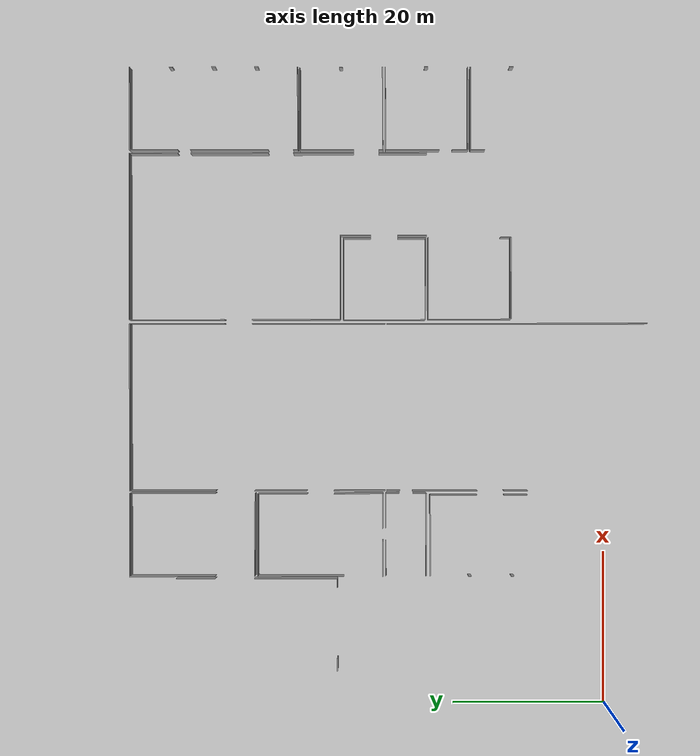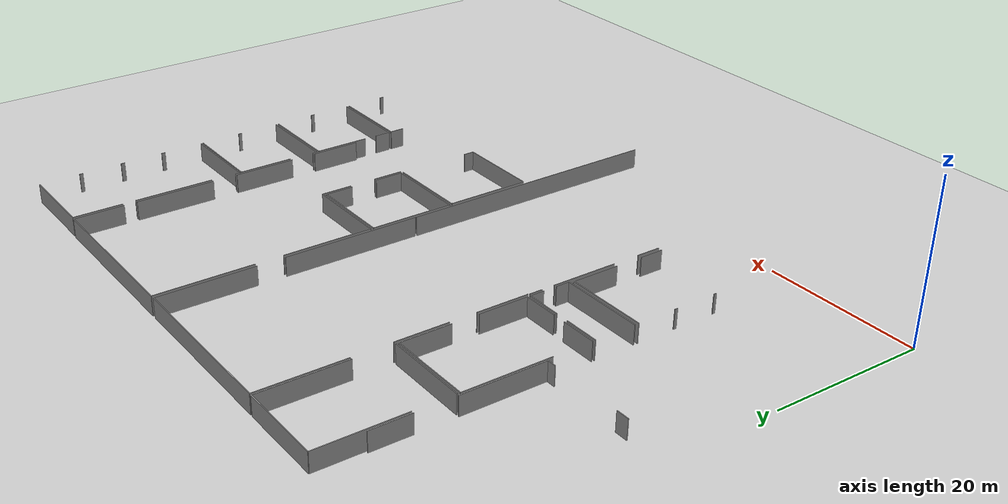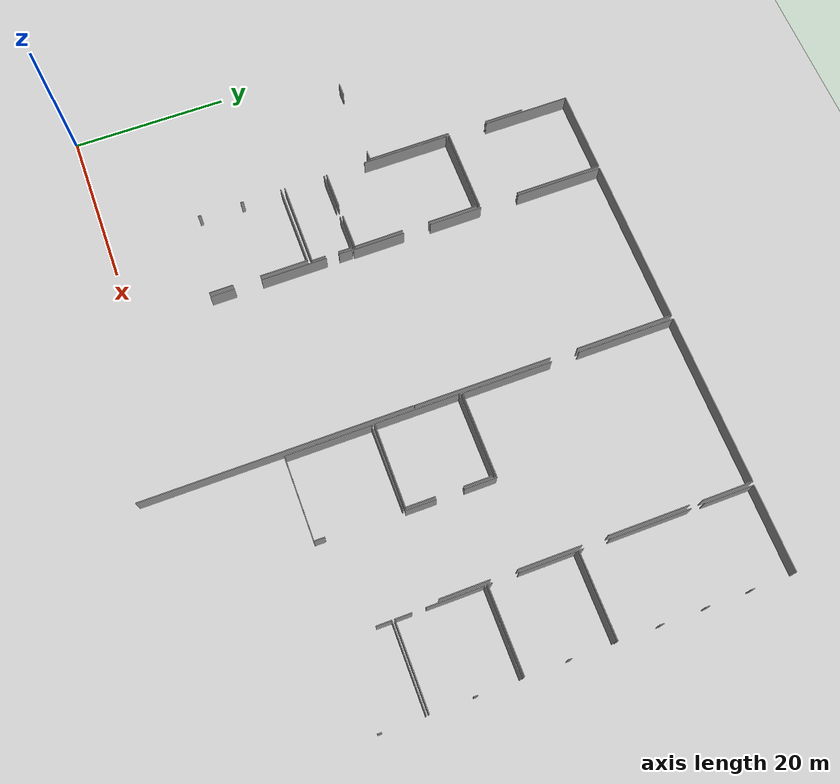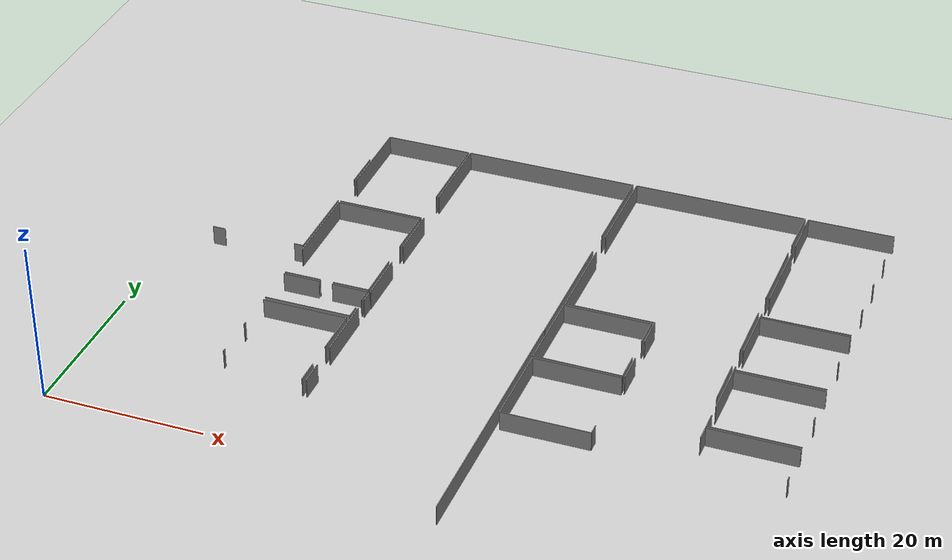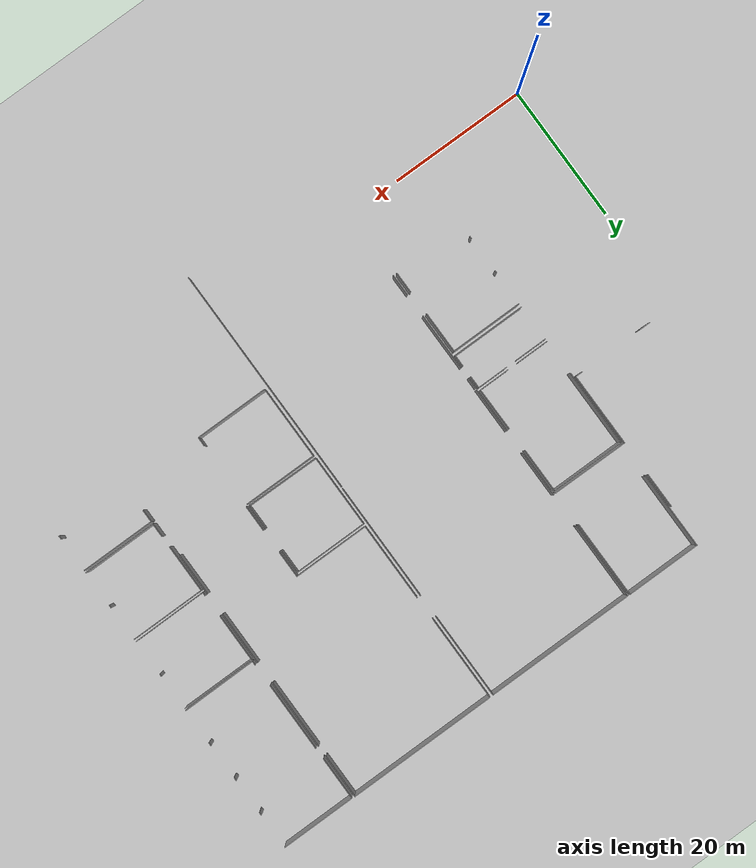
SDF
<sdf version="1.6">
 <world name="default">
  <model name="ground_plane">
   <static>1</static>
   <link name="link">
    <collision name="collision">
     <geometry><plane><normal>0 0 1</normal><size>100 100</size></plane></geometry>
     <surface><friction><ode><mu>100</mu><mu2>50</mu2></ode></friction></surface>
    </collision>
    <visual name="visual">
     <cast_shadows>0</cast_shadows>
     <geometry><plane><normal>0 0 1</normal><size>100 100</size></plane></geometry>
     <material>
      <script><uri>file://media/materials/scripts/gazebo.material</uri><name>Gazebo/Grey</name></script>
     </material>
    </visual>
   </link>
  </model>
  <model name="0510045904_A_40_1_102">
   <static>1</static>
   <link name="Wall_203">
    <collision name="Wall_203_Collision">
     <geometry><box><size>6.77136364213 0.1 2.5</size></box></geometry>
     <pose>3.38568182107 0 1.25 0 0 0</pose>
    </collision>
    <visual name="Wall_203_Visual">
     <pose>3.38568182107 0 1.25 0 0 0</pose>
     <geometry><box><size>6.77136364213 0.1 2.5</size></box></geometry>
     <material>
      <script><uri>file://media/materials/scripts/gazebo.material</uri><name>Gazebo/Grey</name></script>
      <ambient>1 1 1 1</ambient>
     </material>
    </visual>
    <pose>112.547132682 -33.5818299542 0 0 0 1.57079632679</pose>
   </link>
   <link name="Wall_204">
    <collision name="Wall_204_Collision">
     <geometry><box><size>6.89121078624 0.1 2.5</size></box></geometry>
     <pose>3.44560539312 0 1.25 0 0 0</pose>
    </collision>
    <visual name="Wall_204_Visual">
     <pose>3.44560539312 0 1.25 0 0 0</pose>
     <geometry><box><size>6.89121078624 0.1 2.5</size></box></geometry>
     <material>
      <script><uri>file://media/materials/scripts/gazebo.material</uri><name>Gazebo/Grey</name></script>
      <ambient>1 1 1 1</ambient>
     </material>
    </visual>
    <pose>112.547132682 -23.302144299 0 0 0 1.57079632679</pose>
   </link>
   <link name="Wall_205">
    <collision name="Wall_205_Collision">
     <geometry><box><size>11.3110820521 0.1 2.5</size></box></geometry>
     <pose>5.65554102606 0 1.25 0 0 0</pose>
    </collision>
    <visual name="Wall_205_Visual">
     <pose>5.65554102606 0 1.25 0 0 0</pose>
     <geometry><box><size>11.3110820521 0.1 2.5</size></box></geometry>
     <material>
      <script><uri>file://media/materials/scripts/gazebo.material</uri><name>Gazebo/Grey</name></script>
      <ambient>1 1 1 1</ambient>
     </material>
    </visual>
    <pose>112.547132682 -11.3301255602 0 0 0 1.57079632679</pose>
   </link>
   <link name="Wall_206">
    <collision name="Wall_206_Collision">
     <geometry><box><size>21.9612274176 0.1 2.5</size></box></geometry>
     <pose>10.9806137088 0 1.25 0 0 0</pose>
    </collision>
    <visual name="Wall_206_Visual">
     <pose>10.9806137088 0 1.25 0 0 0</pose>
     <geometry><box><size>21.9612274176 0.1 2.5</size></box></geometry>
     <material>
      <script><uri>file://media/materials/scripts/gazebo.material</uri><name>Gazebo/Grey</name></script>
      <ambient>1 1 1 1</ambient>
     </material>
    </visual>
    <pose>112.547132682 -0.0190435080681 0 0 0 0.0</pose>
   </link>
   <link name="Wall_207">
    <collision name="Wall_207_Collision">
     <geometry><box><size>12.4978734749 0.1 2.5</size></box></geometry>
     <pose>6.24893673747 0 1.25 0 0 0</pose>
    </collision>
    <visual name="Wall_207_Visual">
     <pose>6.24893673747 0 1.25 0 0 0</pose>
     <geometry><box><size>12.4978734749 0.1 2.5</size></box></geometry>
     <material>
      <script><uri>file://media/materials/scripts/gazebo.material</uri><name>Gazebo/Grey</name></script>
      <ambient>1 1 1 1</ambient>
     </material>
    </visual>
    <pose>134.5083601 -0.0190435080681 0 0 0 -1.57079632679</pose>
   </link>
   <link name="Wall_208">
    <collision name="Wall_208_Collision">
     <geometry><box><size>17.4921019273 0.1 2.5</size></box></geometry>
     <pose>8.74605096366 0 1.25 0 0 0</pose>
    </collision>
    <visual name="Wall_208_Visual">
     <pose>8.74605096366 0 1.25 0 0 0</pose>
     <geometry><box><size>17.4921019273 0.1 2.5</size></box></geometry>
     <material>
      <script><uri>file://media/materials/scripts/gazebo.material</uri><name>Gazebo/Grey</name></script>
      <ambient>1 1 1 1</ambient>
     </material>
    </visual>
    <pose>134.5083601 -16.08973301 0 0 0 -1.57155115319</pose>
   </link>
   <link name="Wall_209">
    <collision name="Wall_209_Collision">
     <geometry><box><size>11.2978785532 0.1 2.5</size></box></geometry>
     <pose>5.6489392766 0 1.25 0 0 0</pose>
    </collision>
    <visual name="Wall_209_Visual">
     <pose>5.6489392766 0 1.25 0 0 0</pose>
     <geometry><box><size>11.2978785532 0.1 2.5</size></box></geometry>
     <material>
      <script><uri>file://media/materials/scripts/gazebo.material</uri><name>Gazebo/Grey</name></script>
      <ambient>1 1 1 1</ambient>
     </material>
    </visual>
    <pose>112.220346084 -11.3027029086 0 0 0 1.57079632679</pose>
   </link>
   <link name="Wall_210">
    <collision name="Wall_210_Collision">
     <geometry><box><size>10.9139614305 0.1 2.5</size></box></geometry>
     <pose>5.45698071527 0 1.25 0 0 0</pose>
    </collision>
    <visual name="Wall_210_Visual">
     <pose>5.45698071527 0 1.25 0 0 0</pose>
     <geometry><box><size>10.9139614305 0.1 2.5</size></box></geometry>
     <material>
      <script><uri>file://media/materials/scripts/gazebo.material</uri><name>Gazebo/Grey</name></script>
      <ambient>1 1 1 1</ambient>
     </material>
    </visual>
    <pose>112.220346084 -0.00482435537725 0 0 0 3.14159265359</pose>
   </link>
   <link name="Wall_211">
    <collision name="Wall_211_Collision">
     <geometry><box><size>11.2074853682 0.1 2.5</size></box></geometry>
     <pose>5.60374268412 0 1.25 0 0 0</pose>
    </collision>
    <visual name="Wall_211_Visual">
     <pose>5.60374268412 0 1.25 0 0 0</pose>
     <geometry><box><size>11.2074853682 0.1 2.5</size></box></geometry>
     <material>
      <script><uri>file://media/materials/scripts/gazebo.material</uri><name>Gazebo/Grey</name></script>
      <ambient>1 1 1 1</ambient>
     </material>
    </visual>
    <pose>101.306384653 -0.00482435537725 0 0 0 -1.57079632679</pose>
   </link>
   <link name="Wall_212">
    <collision name="Wall_212_Collision">
     <geometry><box><size>10.9140941786 0.1 2.5</size></box></geometry>
     <pose>5.45704708928 0 1.25 0 0 0</pose>
    </collision>
    <visual name="Wall_212_Visual">
     <pose>5.45704708928 0 1.25 0 0 0</pose>
     <geometry><box><size>10.9140941786 0.1 2.5</size></box></geometry>
     <material>
      <script><uri>file://media/materials/scripts/gazebo.material</uri><name>Gazebo/Grey</name></script>
      <ambient>1 1 1 1</ambient>
     </material>
    </visual>
    <pose>101.306384653 -16.4155039547 0 0 0 -0.00493214249721</pose>
   </link>
   <link name="Wall_213">
    <collision name="Wall_213_Collision">
     <geometry><box><size>1.17028704914 0.1 2.5</size></box></geometry>
     <pose>0.585143524572 0 1.25 0 0 0</pose>
    </collision>
    <visual name="Wall_213_Visual">
     <pose>0.585143524572 0 1.25 0 0 0</pose>
     <geometry><box><size>1.17028704914 0.1 2.5</size></box></geometry>
     <material>
      <script><uri>file://media/materials/scripts/gazebo.material</uri><name>Gazebo/Grey</name></script>
      <ambient>1 1 1 1</ambient>
     </material>
    </visual>
    <pose>101.003973745 -27.2438965557 0 0 0 3.14159265359</pose>
   </link>
   <link name="Wall_214">
    <collision name="Wall_214_Collision">
     <geometry><box><size>1.65297650031 0.1 2.5</size></box></geometry>
     <pose>0.826488250156 0 1.25 0 0 0</pose>
    </collision>
    <visual name="Wall_214_Visual">
     <pose>0.826488250156 0 1.25 0 0 0</pose>
     <geometry><box><size>1.65297650031 0.1 2.5</size></box></geometry>
     <material>
      <script><uri>file://media/materials/scripts/gazebo.material</uri><name>Gazebo/Grey</name></script>
      <ambient>1 1 1 1</ambient>
     </material>
    </visual>
    <pose>90.538169538 -27.2438965557 0 0 0 3.14159265359</pose>
   </link>
   <link name="Wall_220">
    <collision name="Wall_220_Collision">
     <geometry><box><size>5.16307590742 0.1 2.5</size></box></geometry>
     <pose>2.58153795371 0 1.25 0 0 0</pose>
    </collision>
    <visual name="Wall_220_Visual">
     <pose>2.58153795371 0 1.25 0 0 0</pose>
     <geometry><box><size>5.16307590742 0.1 2.5</size></box></geometry>
     <material>
      <script><uri>file://media/materials/scripts/gazebo.material</uri><name>Gazebo/Grey</name></script>
      <ambient>1 1 1 1</ambient>
     </material>
    </visual>
    <pose>100.991278073 -6.06802341082 0 0 0 -1.57079632679</pose>
   </link>
   <link name="Wall_221">
    <collision name="Wall_221_Collision">
     <geometry><box><size>10.8776592173 0.1 2.5</size></box></geometry>
     <pose>5.43882960863 0 1.25 0 0 0</pose>
    </collision>
    <visual name="Wall_221_Visual">
     <pose>5.43882960863 0 1.25 0 0 0</pose>
     <geometry><box><size>10.8776592173 0.1 2.5</size></box></geometry>
     <material>
      <script><uri>file://media/materials/scripts/gazebo.material</uri><name>Gazebo/Grey</name></script>
      <ambient>1 1 1 1</ambient>
     </material>
    </visual>
    <pose>100.991278073 -16.3662447472 0 0 0 -1.5696291938</pose>
   </link>
   <link name="Wall_222">
    <collision name="Wall_222_Collision">
     <geometry><box><size>4.59583328043 0.1 2.5</size></box></geometry>
     <pose>2.29791664022 0 1.25 0 0 0</pose>
    </collision>
    <visual name="Wall_222_Visual">
     <pose>2.29791664022 0 1.25 0 0 0</pose>
     <geometry><box><size>4.59583328043 0.1 2.5</size></box></geometry>
     <material>
      <script><uri>file://media/materials/scripts/gazebo.material</uri><name>Gazebo/Grey</name></script>
      <ambient>1 1 1 1</ambient>
     </material>
    </visual>
    <pose>112.17057905 -33.2352381073 0 0 0 3.14159265359</pose>
   </link>
   <link name="Wall_223">
    <collision name="Wall_223_Collision">
     <geometry><box><size>4.64636205518 0.1 2.5</size></box></geometry>
     <pose>2.32318102759 0 1.25 0 0 0</pose>
    </collision>
    <visual name="Wall_223_Visual">
     <pose>2.32318102759 0 1.25 0 0 0</pose>
     <geometry><box><size>4.64636205518 0.1 2.5</size></box></geometry>
     <material>
      <script><uri>file://media/materials/scripts/gazebo.material</uri><name>Gazebo/Grey</name></script>
      <ambient>1 1 1 1</ambient>
     </material>
    </visual>
    <pose>105.928624932 -33.2352381073 0 0 0 3.14159265359</pose>
   </link>
   <link name="Wall_224">
    <collision name="Wall_224_Collision">
     <geometry><box><size>11.3077811774 0.1 2.5</size></box></geometry>
     <pose>5.6538905887 0 1.25 0 0 0</pose>
    </collision>
    <visual name="Wall_224_Visual">
     <pose>5.6538905887 0 1.25 0 0 0</pose>
     <geometry><box><size>11.3077811774 0.1 2.5</size></box></geometry>
     <material>
      <script><uri>file://media/materials/scripts/gazebo.material</uri><name>Gazebo/Grey</name></script>
      <ambient>1 1 1 1</ambient>
     </material>
    </visual>
    <pose>101.282262877 -28.1079639951 0 0 0 1.57079632679</pose>
   </link>
   <link name="Wall_225">
    <collision name="Wall_225_Collision">
     <geometry><box><size>10.8593700408 0.1 2.5</size></box></geometry>
     <pose>5.42968502038 0 1.25 0 0 0</pose>
    </collision>
    <visual name="Wall_225_Visual">
     <pose>5.42968502038 0 1.25 0 0 0</pose>
     <geometry><box><size>10.8593700408 0.1 2.5</size></box></geometry>
     <material>
      <script><uri>file://media/materials/scripts/gazebo.material</uri><name>Gazebo/Grey</name></script>
      <ambient>1 1 1 1</ambient>
     </material>
    </visual>
    <pose>101.282262877 -16.8001828177 0 0 0 0.0</pose>
   </link>
   <link name="Wall_226">
    <collision name="Wall_226_Collision">
     <geometry><box><size>6.5613772265 0.1 2.5</size></box></geometry>
     <pose>3.28068861325 0 1.25 0 0 0</pose>
    </collision>
    <visual name="Wall_226_Visual">
     <pose>3.28068861325 0 1.25 0 0 0</pose>
     <geometry><box><size>6.5613772265 0.1 2.5</size></box></geometry>
     <material>
      <script><uri>file://media/materials/scripts/gazebo.material</uri><name>Gazebo/Grey</name></script>
      <ambient>1 1 1 1</ambient>
     </material>
    </visual>
    <pose>112.141632917 -16.8001828177 0 0 0 -1.57079632679</pose>
   </link>
   <link name="Wall_227">
    <collision name="Wall_227_Collision">
     <geometry><box><size>6.39995373816 0.1 2.5</size></box></geometry>
     <pose>3.19997686908 0 1.25 0 0 0</pose>
    </collision>
    <visual name="Wall_227_Visual">
     <pose>3.19997686908 0 1.25 0 0 0</pose>
     <geometry><box><size>6.39995373816 0.1 2.5</size></box></geometry>
     <material>
      <script><uri>file://media/materials/scripts/gazebo.material</uri><name>Gazebo/Grey</name></script>
      <ambient>1 1 1 1</ambient>
     </material>
    </visual>
    <pose>112.141632917 -26.8353498292 0 0 0 -1.56627344552</pose>
   </link>
   <link name="Wall_235">
    <collision name="Wall_235_Collision">
     <geometry><box><size>3.12186575596 0.1 2.5</size></box></geometry>
     <pose>1.56093287798 0 1.25 0 0 0</pose>
    </collision>
    <visual name="Wall_235_Visual">
     <pose>1.56093287798 0 1.25 0 0 0</pose>
     <geometry><box><size>3.12186575596 0.1 2.5</size></box></geometry>
     <material>
      <script><uri>file://media/materials/scripts/gazebo.material</uri><name>Gazebo/Grey</name></script>
      <ambient>1 1 1 1</ambient>
     </material>
    </visual>
    <pose>112.475275179 -52.2442139475 0 0 0 1.57079632679</pose>
   </link>
   <link name="Wall_236">
    <collision name="Wall_236_Collision">
     <geometry><box><size>8.5246359516 0.1 2.5</size></box></geometry>
     <pose>4.2623179758 0 1.25 0 0 0</pose>
    </collision>
    <visual name="Wall_236_Visual">
     <pose>4.2623179758 0 1.25 0 0 0</pose>
     <geometry><box><size>8.5246359516 0.1 2.5</size></box></geometry>
     <material>
      <script><uri>file://media/materials/scripts/gazebo.material</uri><name>Gazebo/Grey</name></script>
      <ambient>1 1 1 1</ambient>
     </material>
    </visual>
    <pose>112.475275179 -45.6371323016 0 0 0 1.57079632679</pose>
   </link>
   <link name="Wall_237">
    <collision name="Wall_237_Collision">
     <geometry><box><size>1.72584965785 0.1 2.5</size></box></geometry>
     <pose>0.862924828926 0 1.25 0 0 0</pose>
    </collision>
    <visual name="Wall_237_Visual">
     <pose>0.862924828926 0 1.25 0 0 0</pose>
     <geometry><box><size>1.72584965785 0.1 2.5</size></box></geometry>
     <material>
      <script><uri>file://media/materials/scripts/gazebo.material</uri><name>Gazebo/Grey</name></script>
      <ambient>1 1 1 1</ambient>
     </material>
    </visual>
    <pose>112.475275179 -35.4656137723 0 0 0 1.57079632679</pose>
   </link>
   <link name="Wall_238">
    <collision name="Wall_238_Collision">
     <geometry><box><size>34.2145822489 0.1 2.5</size></box></geometry>
     <pose>17.1072911245 0 1.25 0 0 0</pose>
    </collision>
    <visual name="Wall_238_Visual">
     <pose>17.1072911245 0 1.25 0 0 0</pose>
     <geometry><box><size>34.2145822489 0.1 2.5</size></box></geometry>
     <material>
      <script><uri>file://media/materials/scripts/gazebo.material</uri><name>Gazebo/Grey</name></script>
      <ambient>1 1 1 1</ambient>
     </material>
    </visual>
    <pose>134.463163508 -33.7397641144 0 0 0 -1.57079632679</pose>
   </link>
   <link name="Wall_240">
    <collision name="Wall_240_Collision">
     <geometry><box><size>1.75200274227 0.1 2.5</size></box></geometry>
     <pose>0.876001371133 0 1.25 0 0 0</pose>
    </collision>
    <visual name="Wall_240_Visual">
     <pose>0.876001371133 0 1.25 0 0 0</pose>
     <geometry><box><size>1.75200274227 0.1 2.5</size></box></geometry>
     <material>
      <script><uri>file://media/materials/scripts/gazebo.material</uri><name>Gazebo/Grey</name></script>
      <ambient>1 1 1 1</ambient>
     </material>
    </visual>
    <pose>112.161692079 -38.8949687052 0 0 0 1.57079632679</pose>
   </link>
   <link name="Wall_241">
    <collision name="Wall_241_Collision">
     <geometry><box><size>1.81979763099 0.1 2.5</size></box></geometry>
     <pose>0.909898815494 0 1.25 0 0 0</pose>
    </collision>
    <visual name="Wall_241_Visual">
     <pose>0.909898815494 0 1.25 0 0 0</pose>
     <geometry><box><size>1.81979763099 0.1 2.5</size></box></geometry>
     <material>
      <script><uri>file://media/materials/scripts/gazebo.material</uri><name>Gazebo/Grey</name></script>
      <ambient>1 1 1 1</ambient>
     </material>
    </visual>
    <pose>112.161692079 -35.4320971981 0 0 0 1.57079632679</pose>
   </link>
   <link name="Wall_242">
    <collision name="Wall_242_Collision">
     <geometry><box><size>4.54428885193 0.1 2.5</size></box></geometry>
     <pose>2.27214442597 0 1.25 0 0 0</pose>
    </collision>
    <visual name="Wall_242_Visual">
     <pose>2.27214442597 0 1.25 0 0 0</pose>
     <geometry><box><size>4.54428885193 0.1 2.5</size></box></geometry>
     <material>
      <script><uri>file://media/materials/scripts/gazebo.material</uri><name>Gazebo/Grey</name></script>
      <ambient>1 1 1 1</ambient>
     </material>
    </visual>
    <pose>112.161692079 -33.6122995671 0 0 0 3.14159265359</pose>
   </link>
   <link name="Wall_243">
    <collision name="Wall_243_Collision">
     <geometry><box><size>4.61462287506 0.1 2.5</size></box></geometry>
     <pose>2.30731143753 0 1.25 0 0 0</pose>
    </collision>
    <visual name="Wall_243_Visual">
     <pose>2.30731143753 0 1.25 0 0 0</pose>
     <geometry><box><size>4.61462287506 0.1 2.5</size></box></geometry>
     <material>
      <script><uri>file://media/materials/scripts/gazebo.material</uri><name>Gazebo/Grey</name></script>
      <ambient>1 1 1 1</ambient>
     </material>
    </visual>
    <pose>105.905518809 -33.6122995671 0 0 0 3.14159265359</pose>
   </link>
   <link name="Wall_244">
    <collision name="Wall_244_Collision">
     <geometry><box><size>10.8707971064 0.1 2.5</size></box></geometry>
     <pose>5.43539855319 0 1.25 0 0 0</pose>
    </collision>
    <visual name="Wall_244_Visual">
     <pose>5.43539855319 0 1.25 0 0 0</pose>
     <geometry><box><size>10.8707971064 0.1 2.5</size></box></geometry>
     <material>
      <script><uri>file://media/materials/scripts/gazebo.material</uri><name>Gazebo/Grey</name></script>
      <ambient>1 1 1 1</ambient>
     </material>
    </visual>
    <pose>101.290895934 -38.8903982632 0 0 0 -0.000420433021266</pose>
   </link>
   <link name="Wall_246">
    <collision name="Wall_246_Collision">
     <geometry><box><size>3.07209872155 0.1 2.5</size></box></geometry>
     <pose>1.53604936077 0 1.25 0 0 0</pose>
    </collision>
    <visual name="Wall_246_Visual">
     <pose>1.53604936077 0 1.25 0 0 0</pose>
     <geometry><box><size>3.07209872155 0.1 2.5</size></box></geometry>
     <material>
      <script><uri>file://media/materials/scripts/gazebo.material</uri><name>Gazebo/Grey</name></script>
      <ambient>1 1 1 1</ambient>
     </material>
    </visual>
    <pose>111.933169982 -52.2109512867 0 0 0 1.57079632679</pose>
   </link>
   <link name="Wall_247">
    <collision name="Wall_247_Collision">
     <geometry><box><size>6.16324095116 0.1 2.5</size></box></geometry>
     <pose>3.08162047558 0 1.25 0 0 0</pose>
    </collision>
    <visual name="Wall_247_Visual">
     <pose>3.08162047558 0 1.25 0 0 0</pose>
     <geometry><box><size>6.16324095116 0.1 2.5</size></box></geometry>
     <material>
      <script><uri>file://media/materials/scripts/gazebo.material</uri><name>Gazebo/Grey</name></script>
      <ambient>1 1 1 1</ambient>
     </material>
    </visual>
    <pose>111.933169982 -45.598791372 0 0 0 1.57079632679</pose>
   </link>
   <link name="Wall_248">
    <collision name="Wall_248_Collision">
     <geometry><box><size>10.6509071058 0.1 2.5</size></box></geometry>
     <pose>5.32545355288 0 1.25 0 0 0</pose>
    </collision>
    <visual name="Wall_248_Visual">
     <pose>5.32545355288 0 1.25 0 0 0</pose>
     <geometry><box><size>10.6509071058 0.1 2.5</size></box></geometry>
     <material>
      <script><uri>file://media/materials/scripts/gazebo.material</uri><name>Gazebo/Grey</name></script>
      <ambient>1 1 1 1</ambient>
     </material>
    </visual>
    <pose>111.933169982 -39.4355504209 0 0 0 3.14159265359</pose>
   </link>
   <link name="Wall_249">
    <collision name="Wall_249_Collision">
     <geometry><box><size>0.406515418894 0.1 2.5</size></box></geometry>
     <pose>0.203257709447 0 1.25 0 0 0</pose>
    </collision>
    <visual name="Wall_249_Visual">
     <pose>0.203257709447 0 1.25 0 0 0</pose>
     <geometry><box><size>0.406515418894 0.1 2.5</size></box></geometry>
     <material>
      <script><uri>file://media/materials/scripts/gazebo.material</uri><name>Gazebo/Grey</name></script>
      <ambient>1 1 1 1</ambient>
     </material>
    </visual>
    <pose>101.282262877 -44.4221564869 0 0 0 -1.57079632679</pose>
   </link>
   <link name="Wall_250">
    <collision name="Wall_250_Collision">
     <geometry><box><size>0.384171036094 0.1 2.5</size></box></geometry>
     <pose>0.192085518047 0 1.25 0 0 0</pose>
    </collision>
    <visual name="Wall_250_Visual">
     <pose>0.192085518047 0 1.25 0 0 0</pose>
     <geometry><box><size>0.384171036094 0.1 2.5</size></box></geometry>
     <material>
      <script><uri>file://media/materials/scripts/gazebo.material</uri><name>Gazebo/Grey</name></script>
      <ambient>1 1 1 1</ambient>
     </material>
    </visual>
    <pose>101.282262877 -50.0587809616 0 0 0 -1.57079632679</pose>
   </link>
   <link name="Wall_262">
    <collision name="Wall_262_Collision">
     <geometry><box><size>3.87903563675 0.1 2.5</size></box></geometry>
     <pose>1.93951781838 0 1.25 0 0 0</pose>
    </collision>
    <visual name="Wall_262_Visual">
     <pose>1.93951781838 0 1.25 0 0 0</pose>
     <geometry><box><size>3.87903563675 0.1 2.5</size></box></geometry>
     <material>
      <script><uri>file://media/materials/scripts/gazebo.material</uri><name>Gazebo/Grey</name></script>
      <ambient>1 1 1 1</ambient>
     </material>
    </visual>
    <pose>146.092145188 -39.0655985375 0 0 0 1.57079632679</pose>
   </link>
   <link name="Wall_263">
    <collision name="Wall_263_Collision">
     <geometry><box><size>4.02960630721 0.1 2.5</size></box></geometry>
     <pose>2.0148031536 0 1.25 0 0 0</pose>
    </collision>
    <visual name="Wall_263_Visual">
     <pose>2.0148031536 0 1.25 0 0 0</pose>
     <geometry><box><size>4.02960630721 0.1 2.5</size></box></geometry>
     <material>
      <script><uri>file://media/materials/scripts/gazebo.material</uri><name>Gazebo/Grey</name></script>
      <ambient>1 1 1 1</ambient>
     </material>
    </visual>
    <pose>146.092145188 -31.7132809425 0 0 0 1.57079632679</pose>
   </link>
   <link name="Wall_264">
    <collision name="Wall_264_Collision">
     <geometry><box><size>11.0800208209 0.1 2.5</size></box></geometry>
     <pose>5.54001041045 0 1.25 0 0 0</pose>
    </collision>
    <visual name="Wall_264_Visual">
     <pose>5.54001041045 0 1.25 0 0 0</pose>
     <geometry><box><size>11.0800208209 0.1 2.5</size></box></geometry>
     <material>
      <script><uri>file://media/materials/scripts/gazebo.material</uri><name>Gazebo/Grey</name></script>
      <ambient>1 1 1 1</ambient>
     </material>
    </visual>
    <pose>146.092145188 -27.6836746353 0 0 0 3.14159265359</pose>
   </link>
   <link name="Wall_265">
    <collision name="Wall_265_Collision">
     <geometry><box><size>11.5622024452 0.1 2.5</size></box></geometry>
     <pose>5.78110122259 0 1.25 0 0 0</pose>
    </collision>
    <visual name="Wall_265_Visual">
     <pose>5.78110122259 0 1.25 0 0 0</pose>
     <geometry><box><size>11.5622024452 0.1 2.5</size></box></geometry>
     <material>
      <script><uri>file://media/materials/scripts/gazebo.material</uri><name>Gazebo/Grey</name></script>
      <ambient>1 1 1 1</ambient>
     </material>
    </visual>
    <pose>135.012124367 -27.6836746353 0 0 0 1.57079632679</pose>
   </link>
   <link name="Wall_266">
    <collision name="Wall_266_Collision">
     <geometry><box><size>12.5412926733 0.1 2.5</size></box></geometry>
     <pose>6.27064633666 0 1.25 0 0 0</pose>
    </collision>
    <visual name="Wall_266_Visual">
     <pose>6.27064633666 0 1.25 0 0 0</pose>
     <geometry><box><size>12.5412926733 0.1 2.5</size></box></geometry>
     <material>
      <script><uri>file://media/materials/scripts/gazebo.material</uri><name>Gazebo/Grey</name></script>
      <ambient>1 1 1 1</ambient>
     </material>
    </visual>
    <pose>135.012124367 -12.5412926733 0 0 0 1.57079632679</pose>
   </link>
   <link name="Wall_267">
    <collision name="Wall_267_Collision">
     <geometry><box><size>21.8941942692 0.1 2.5</size></box></geometry>
     <pose>10.9470971346 0 1.25 0 0 0</pose>
    </collision>
    <visual name="Wall_267_Visual">
     <pose>10.9470971346 0 1.25 0 0 0</pose>
     <geometry><box><size>21.8941942692 0.1 2.5</size></box></geometry>
     <material>
      <script><uri>file://media/materials/scripts/gazebo.material</uri><name>Gazebo/Grey</name></script>
      <ambient>1 1 1 1</ambient>
     </material>
    </visual>
    <pose>135.012124367 -0.0 0 0 0 0.0</pose>
   </link>
   <link name="Wall_268">
    <collision name="Wall_268_Collision">
     <geometry><box><size>6.3937943555 0.1 2.5</size></box></geometry>
     <pose>3.19689717775 0 1.25 0 0 0</pose>
    </collision>
    <visual name="Wall_268_Visual">
     <pose>3.19689717775 0 1.25 0 0 0</pose>
     <geometry><box><size>6.3937943555 0.1 2.5</size></box></geometry>
     <material>
      <script><uri>file://media/materials/scripts/gazebo.material</uri><name>Gazebo/Grey</name></script>
      <ambient>1 1 1 1</ambient>
     </material>
    </visual>
    <pose>156.906318636 -0.0 0 0 0 -1.57079632679</pose>
   </link>
   <link name="Wall_269">
    <collision name="Wall_269_Collision">
     <geometry><box><size>10.2223012175 0.1 2.5</size></box></geometry>
     <pose>5.11115060876 0 1.25 0 0 0</pose>
    </collision>
    <visual name="Wall_269_Visual">
     <pose>5.11115060876 0 1.25 0 0 0</pose>
     <geometry><box><size>10.2223012175 0.1 2.5</size></box></geometry>
     <material>
      <script><uri>file://media/materials/scripts/gazebo.material</uri><name>Gazebo/Grey</name></script>
      <ambient>1 1 1 1</ambient>
     </material>
    </visual>
    <pose>156.906318636 -8.06378305636 0 0 0 -1.57079632679</pose>
   </link>
   <link name="Wall_270">
    <collision name="Wall_270_Collision">
     <geometry><box><size>7.93174806708 0.1 2.5</size></box></geometry>
     <pose>3.96587403354 0 1.25 0 0 0</pose>
    </collision>
    <visual name="Wall_270_Visual">
     <pose>3.96587403354 0 1.25 0 0 0</pose>
     <geometry><box><size>7.93174806708 0.1 2.5</size></box></geometry>
     <material>
      <script><uri>file://media/materials/scripts/gazebo.material</uri><name>Gazebo/Grey</name></script>
      <ambient>1 1 1 1</ambient>
     </material>
    </visual>
    <pose>156.906318636 -21.5608059213 0 0 0 -1.57079632679</pose>
   </link>
   <link name="Wall_271">
    <collision name="Wall_271_Collision">
     <geometry><box><size>6.27983753179 0.1 2.5</size></box></geometry>
     <pose>3.13991876589 0 1.25 0 0 0</pose>
    </collision>
    <visual name="Wall_271_Visual">
     <pose>3.13991876589 0 1.25 0 0 0</pose>
     <geometry><box><size>6.27983753179 0.1 2.5</size></box></geometry>
     <material>
      <script><uri>file://media/materials/scripts/gazebo.material</uri><name>Gazebo/Grey</name></script>
      <ambient>1 1 1 1</ambient>
     </material>
    </visual>
    <pose>156.906318636 -32.7858113169 0 0 0 -1.56679343697</pose>
   </link>
   <link name="Wall_272">
    <collision name="Wall_272_Collision">
     <geometry><box><size>3.70713623726 0.1 2.5</size></box></geometry>
     <pose>1.85356811863 0 1.25 0 0 0</pose>
    </collision>
    <visual name="Wall_272_Visual">
     <pose>1.85356811863 0 1.25 0 0 0</pose>
     <geometry><box><size>3.70713623726 0.1 2.5</size></box></geometry>
     <material>
      <script><uri>file://media/materials/scripts/gazebo.material</uri><name>Gazebo/Grey</name></script>
      <ambient>1 1 1 1</ambient>
     </material>
    </visual>
    <pose>145.763327282 -38.9228991837 0 0 0 1.57079632679</pose>
   </link>
   <link name="Wall_273">
    <collision name="Wall_273_Collision">
     <geometry><box><size>3.65000571305 0.1 2.5</size></box></geometry>
     <pose>1.82500285653 0 1.25 0 0 0</pose>
    </collision>
    <visual name="Wall_273_Visual">
     <pose>1.82500285653 0 1.25 0 0 0</pose>
     <geometry><box><size>3.65000571305 0.1 2.5</size></box></geometry>
     <material>
      <script><uri>file://media/materials/scripts/gazebo.material</uri><name>Gazebo/Grey</name></script>
      <ambient>1 1 1 1</ambient>
     </material>
    </visual>
    <pose>145.763327282 -31.7117574619 0 0 0 1.57079632679</pose>
   </link>
   <link name="Wall_274">
    <collision name="Wall_274_Collision">
     <geometry><box><size>10.7963995074 0.1 2.5</size></box></geometry>
     <pose>5.3981997537 0 1.25 0 0 0</pose>
    </collision>
    <visual name="Wall_274_Visual">
     <pose>5.3981997537 0 1.25 0 0 0</pose>
     <geometry><box><size>10.7963995074 0.1 2.5</size></box></geometry>
     <material>
      <script><uri>file://media/materials/scripts/gazebo.material</uri><name>Gazebo/Grey</name></script>
      <ambient>1 1 1 1</ambient>
     </material>
    </visual>
    <pose>145.763327282 -28.0617517488 0 0 0 3.14159265359</pose>
   </link>
   <link name="Wall_275">
    <collision name="Wall_275_Collision">
     <geometry><box><size>10.7740551246 0.1 2.5</size></box></geometry>
     <pose>5.3870275623 0 1.25 0 0 0</pose>
    </collision>
    <visual name="Wall_275_Visual">
     <pose>5.3870275623 0 1.25 0 0 0</pose>
     <geometry><box><size>10.7740551246 0.1 2.5</size></box></geometry>
     <material>
      <script><uri>file://media/materials/scripts/gazebo.material</uri><name>Gazebo/Grey</name></script>
      <ambient>1 1 1 1</ambient>
     </material>
    </visual>
    <pose>134.966927774 -28.0617517488 0 0 0 -1.57079632679</pose>
   </link>
   <link name="Wall_276">
    <collision name="Wall_276_Collision">
     <geometry><box><size>10.7967507795 0.1 2.5</size></box></geometry>
     <pose>5.39837538974 0 1.25 0 0 0</pose>
    </collision>
    <visual name="Wall_276_Visual">
     <pose>5.39837538974 0 1.25 0 0 0</pose>
     <geometry><box><size>10.7967507795 0.1 2.5</size></box></geometry>
     <material>
      <script><uri>file://media/materials/scripts/gazebo.material</uri><name>Gazebo/Grey</name></script>
      <ambient>1 1 1 1</ambient>
     </material>
    </visual>
    <pose>134.966927774 -38.8358068734 0 0 0 -0.00806661712752</pose>
   </link>
   <link name="Wall_277">
    <collision name="Wall_277_Collision">
     <geometry><box><size>0.500971218911 0.1 2.5</size></box></geometry>
     <pose>0.250485609456 0 1.25 0 0 0</pose>
    </collision>
    <visual name="Wall_277_Visual">
     <pose>0.250485609456 0 1.25 0 0 0</pose>
     <geometry><box><size>0.500971218911 0.1 2.5</size></box></geometry>
     <material>
      <script><uri>file://media/materials/scripts/gazebo.material</uri><name>Gazebo/Grey</name></script>
      <ambient>1 1 1 1</ambient>
     </material>
    </visual>
    <pose>168.196579786 -16.9672578618 0 0 0 1.57079632679</pose>
   </link>
   <link name="Wall_278">
    <collision name="Wall_278_Collision">
     <geometry><box><size>0.51747559257 0.1 2.5</size></box></geometry>
     <pose>0.258737796285 0 1.25 0 0 0</pose>
    </collision>
    <visual name="Wall_278_Visual">
     <pose>0.258737796285 0 1.25 0 0 0</pose>
     <geometry><box><size>0.51747559257 0.1 2.5</size></box></geometry>
     <material>
      <script><uri>file://media/materials/scripts/gazebo.material</uri><name>Gazebo/Grey</name></script>
      <ambient>1 1 1 1</ambient>
     </material>
    </visual>
    <pose>168.196579786 -11.3575482118 0 0 0 1.57079632679</pose>
   </link>
   <link name="Wall_279">
    <collision name="Wall_279_Collision">
     <geometry><box><size>0.460852895248 0.1 2.5</size></box></geometry>
     <pose>0.230426447624 0 1.25 0 0 0</pose>
    </collision>
    <visual name="Wall_279_Visual">
     <pose>0.230426447624 0 1.25 0 0 0</pose>
     <geometry><box><size>0.460852895248 0.1 2.5</size></box></geometry>
     <material>
      <script><uri>file://media/materials/scripts/gazebo.material</uri><name>Gazebo/Grey</name></script>
      <ambient>1 1 1 1</ambient>
     </material>
    </visual>
    <pose>168.196579786 -5.72143156398 0 0 0 1.57079632679</pose>
   </link>
   <link name="Wall_280">
    <collision name="Wall_280_Collision">
     <geometry><box><size>10.8540378585 0.1 2.5</size></box></geometry>
     <pose>5.42701892925 0 1.25 0 0 0</pose>
    </collision>
    <visual name="Wall_280_Visual">
     <pose>5.42701892925 0 1.25 0 0 0</pose>
     <geometry><box><size>10.8540378585 0.1 2.5</size></box></geometry>
     <material>
      <script><uri>file://media/materials/scripts/gazebo.material</uri><name>Gazebo/Grey</name></script>
      <ambient>1 1 1 1</ambient>
     </material>
    </visual>
    <pose>168.196579786 -0.0677948887224 0 0 0 3.14159265359</pose>
   </link>
   <link name="Wall_281">
    <collision name="Wall_281_Collision">
     <geometry><box><size>6.31838206355 0.1 2.5</size></box></geometry>
     <pose>3.15919103178 0 1.25 0 0 0</pose>
    </collision>
    <visual name="Wall_281_Visual">
     <pose>3.15919103178 0 1.25 0 0 0</pose>
     <geometry><box><size>6.31838206355 0.1 2.5</size></box></geometry>
     <material>
      <script><uri>file://media/materials/scripts/gazebo.material</uri><name>Gazebo/Grey</name></script>
      <ambient>1 1 1 1</ambient>
     </material>
    </visual>
    <pose>157.342541927 -0.0677948887224 0 0 0 -1.57079632679</pose>
   </link>
   <link name="Wall_282">
    <collision name="Wall_282_Collision">
     <geometry><box><size>10.2332194955 0.1 2.5</size></box></geometry>
     <pose>5.11660974774 0 1.25 0 0 0</pose>
    </collision>
    <visual name="Wall_282_Visual">
     <pose>5.11660974774 0 1.25 0 0 0</pose>
     <geometry><box><size>10.2332194955 0.1 2.5</size></box></geometry>
     <material>
      <script><uri>file://media/materials/scripts/gazebo.material</uri><name>Gazebo/Grey</name></script>
      <ambient>1 1 1 1</ambient>
     </material>
    </visual>
    <pose>157.342541927 -8.04448563485 0 0 0 -1.57079632679</pose>
   </link>
   <link name="Wall_283">
    <collision name="Wall_283_Collision">
     <geometry><box><size>0.613200959793 0.1 2.5</size></box></geometry>
     <pose>0.306600479896 0 1.25 0 0 0</pose>
    </collision>
    <visual name="Wall_283_Visual">
     <pose>0.306600479896 0 1.25 0 0 0</pose>
     <geometry><box><size>0.613200959793 0.1 2.5</size></box></geometry>
     <material>
      <script><uri>file://media/materials/scripts/gazebo.material</uri><name>Gazebo/Grey</name></script>
      <ambient>1 1 1 1</ambient>
     </material>
    </visual>
    <pose>157.342541927 -21.5501415567 0 0 0 -1.57079632679</pose>
   </link>
   <link name="Wall_284">
    <collision name="Wall_284_Collision">
     <geometry><box><size>10.854194968 0.1 2.5</size></box></geometry>
     <pose>5.42709748402 0 1.25 0 0 0</pose>
    </collision>
    <visual name="Wall_284_Visual">
     <pose>5.42709748402 0 1.25 0 0 0</pose>
     <geometry><box><size>10.854194968 0.1 2.5</size></box></geometry>
     <material>
      <script><uri>file://media/materials/scripts/gazebo.material</uri><name>Gazebo/Grey</name></script>
      <ambient>1 1 1 1</ambient>
     </material>
    </visual>
    <pose>157.342541927 -22.1633425165 0 0 0 0.00538044261726</pose>
   </link>
   <link name="Wall_285">
    <collision name="Wall_285_Collision">
     <geometry><box><size>0.573844376452 0.1 2.5</size></box></geometry>
     <pose>0.286922188226 0 1.25 0 0 0</pose>
    </collision>
    <visual name="Wall_285_Visual">
     <pose>0.286922188226 0 1.25 0 0 0</pose>
     <geometry><box><size>0.573844376452 0.1 2.5</size></box></geometry>
     <material>
      <script><uri>file://media/materials/scripts/gazebo.material</uri><name>Gazebo/Grey</name></script>
      <ambient>1 1 1 1</ambient>
     </material>
    </visual>
    <pose>157.306486219 -33.3157286681 0 0 0 1.57079632679</pose>
   </link>
   <link name="Wall_286">
    <collision name="Wall_286_Collision">
     <geometry><box><size>7.09535719273 0.1 2.5</size></box></geometry>
     <pose>3.54767859637 0 1.25 0 0 0</pose>
    </collision>
    <visual name="Wall_286_Visual">
     <pose>3.54767859637 0 1.25 0 0 0</pose>
     <geometry><box><size>7.09535719273 0.1 2.5</size></box></geometry>
     <material>
      <script><uri>file://media/materials/scripts/gazebo.material</uri><name>Gazebo/Grey</name></script>
      <ambient>1 1 1 1</ambient>
     </material>
    </visual>
    <pose>157.306486219 -29.4884913733 0 0 0 1.57079632679</pose>
   </link>
   <link name="Wall_287">
    <collision name="Wall_287_Collision">
     <geometry><box><size>10.8266152069 0.1 2.5</size></box></geometry>
     <pose>5.41330760344 0 1.25 0 0 0</pose>
    </collision>
    <visual name="Wall_287_Visual">
     <pose>5.41330760344 0 1.25 0 0 0</pose>
     <geometry><box><size>10.8266152069 0.1 2.5</size></box></geometry>
     <material>
      <script><uri>file://media/materials/scripts/gazebo.material</uri><name>Gazebo/Grey</name></script>
      <ambient>1 1 1 1</ambient>
     </material>
    </visual>
    <pose>157.306486219 -22.3931341806 0 0 0 0.0</pose>
   </link>
   <link name="Wall_288">
    <collision name="Wall_288_Collision">
     <geometry><box><size>0.433938070512 0.1 2.5</size></box></geometry>
     <pose>0.216969035256 0 1.25 0 0 0</pose>
    </collision>
    <visual name="Wall_288_Visual">
     <pose>0.216969035256 0 1.25 0 0 0</pose>
     <geometry><box><size>0.433938070512 0.1 2.5</size></box></geometry>
     <material>
      <script><uri>file://media/materials/scripts/gazebo.material</uri><name>Gazebo/Grey</name></script>
      <ambient>1 1 1 1</ambient>
     </material>
    </visual>
    <pose>168.133101426 -27.6021684208 0 0 0 -1.57079632679</pose>
   </link>
   <link name="Wall_289">
    <collision name="Wall_289_Collision">
     <geometry><box><size>10.8267490259 0.1 2.5</size></box></geometry>
     <pose>5.41337451293 0 1.25 0 0 0</pose>
    </collision>
    <visual name="Wall_289_Visual">
     <pose>5.41337451293 0 1.25 0 0 0</pose>
     <geometry><box><size>10.8267490259 0.1 2.5</size></box></geometry>
     <material>
      <script><uri>file://media/materials/scripts/gazebo.material</uri><name>Gazebo/Grey</name></script>
      <ambient>1 1 1 1</ambient>
     </material>
    </visual>
    <pose>168.133101426 -33.2618990186 0 0 0 -3.13662072054</pose>
   </link>
   <link name="Wall_290">
    <collision name="Wall_290_Collision">
     <geometry><box><size>10.8629248289 0.1 2.5</size></box></geometry>
     <pose>5.43146241446 0 1.25 0 0 0</pose>
    </collision>
    <visual name="Wall_290_Visual">
     <pose>5.43146241446 0 1.25 0 0 0</pose>
     <geometry><box><size>10.8629248289 0.1 2.5</size></box></geometry>
     <material>
      <script><uri>file://media/materials/scripts/gazebo.material</uri><name>Gazebo/Grey</name></script>
      <ambient>1 1 1 1</ambient>
     </material>
    </visual>
    <pose>135.028374827 -50.0961062374 0 0 0 1.57079632679</pose>
   </link>
   <link name="Wall_291">
    <collision name="Wall_291_Collision">
     <geometry><box><size>10.7857351429 0.1 2.5</size></box></geometry>
     <pose>5.39286757144 0 1.25 0 0 0</pose>
    </collision>
    <visual name="Wall_291_Visual">
     <pose>5.39286757144 0 1.25 0 0 0</pose>
     <geometry><box><size>10.7857351429 0.1 2.5</size></box></geometry>
     <material>
      <script><uri>file://media/materials/scripts/gazebo.material</uri><name>Gazebo/Grey</name></script>
      <ambient>1 1 1 1</ambient>
     </material>
    </visual>
    <pose>135.028374827 -39.2331814085 0 0 0 0.0</pose>
   </link>
   <link name="Wall_292">
    <collision name="Wall_292_Collision">
     <geometry><box><size>1.34396384273 0.1 2.5</size></box></geometry>
     <pose>0.671981921363 0 1.25 0 0 0</pose>
    </collision>
    <visual name="Wall_292_Visual">
     <pose>0.671981921363 0 1.25 0 0 0</pose>
     <geometry><box><size>1.34396384273 0.1 2.5</size></box></geometry>
     <material>
      <script><uri>file://media/materials/scripts/gazebo.material</uri><name>Gazebo/Grey</name></script>
      <ambient>1 1 1 1</ambient>
     </material>
    </visual>
    <pose>145.81410997 -48.7473180393 0 0 0 -1.57079632679</pose>
   </link>
   <link name="Wall_293">
    <collision name="Wall_293_Collision">
     <geometry><box><size>10.7857362218 0.1 2.5</size></box></geometry>
     <pose>5.39286811092 0 1.25 0 0 0</pose>
    </collision>
    <visual name="Wall_293_Visual">
     <pose>5.39286811092 0 1.25 0 0 0</pose>
     <geometry><box><size>10.7857362218 0.1 2.5</size></box></geometry>
     <material>
      <script><uri>file://media/materials/scripts/gazebo.material</uri><name>Gazebo/Grey</name></script>
      <ambient>1 1 1 1</ambient>
     </material>
    </visual>
    <pose>145.81410997 -50.091281882 0 0 0 -3.14114536326</pose>
   </link>
   <link name="Wall_294">
    <collision name="Wall_294_Collision">
     <geometry><box><size>2.08209021545 0.1 2.5</size></box></geometry>
     <pose>1.04104510772 0 1.25 0 0 0</pose>
    </collision>
    <visual name="Wall_294_Visual">
     <pose>1.04104510772 0 1.25 0 0 0</pose>
     <geometry><box><size>2.08209021545 0.1 2.5</size></box></geometry>
     <material>
      <script><uri>file://media/materials/scripts/gazebo.material</uri><name>Gazebo/Grey</name></script>
      <ambient>1 1 1 1</ambient>
     </material>
    </visual>
    <pose>157.309279267 -44.4737009154 0 0 0 1.57079632679</pose>
   </link>
   <link name="Wall_295">
    <collision name="Wall_295_Collision">
     <geometry><box><size>7.08418500133 0.1 2.5</size></box></geometry>
     <pose>3.54209250067 0 1.25 0 0 0</pose>
    </collision>
    <visual name="Wall_295_Visual">
     <pose>3.54209250067 0 1.25 0 0 0</pose>
     <geometry><box><size>7.08418500133 0.1 2.5</size></box></geometry>
     <material>
      <script><uri>file://media/materials/scripts/gazebo.material</uri><name>Gazebo/Grey</name></script>
      <ambient>1 1 1 1</ambient>
     </material>
    </visual>
    <pose>157.309279267 -40.7256846141 0 0 0 1.57079632679</pose>
   </link>
   <link name="Wall_296">
    <collision name="Wall_296_Collision">
     <geometry><box><size>10.8746048472 0.1 2.5</size></box></geometry>
     <pose>5.4373024236 0 1.25 0 0 0</pose>
    </collision>
    <visual name="Wall_296_Visual">
     <pose>5.4373024236 0 1.25 0 0 0</pose>
     <geometry><box><size>10.8746048472 0.1 2.5</size></box></geometry>
     <material>
      <script><uri>file://media/materials/scripts/gazebo.material</uri><name>Gazebo/Grey</name></script>
      <ambient>1 1 1 1</ambient>
     </material>
    </visual>
    <pose>157.309279267 -33.6414996128 0 0 0 0.0</pose>
   </link>
   <link name="Wall_297">
    <collision name="Wall_297_Collision">
     <geometry><box><size>0.478880749552 0.1 2.5</size></box></geometry>
     <pose>0.239440374776 0 1.25 0 0 0</pose>
    </collision>
    <visual name="Wall_297_Visual">
     <pose>0.239440374776 0 1.25 0 0 0</pose>
     <geometry><box><size>0.478880749552 0.1 2.5</size></box></geometry>
     <material>
      <script><uri>file://media/materials/scripts/gazebo.material</uri><name>Gazebo/Grey</name></script>
      <ambient>1 1 1 1</ambient>
     </material>
    </visual>
    <pose>168.183884114 -38.7603945815 0 0 0 -1.57079632679</pose>
   </link>
   <link name="Wall_298">
    <collision name="Wall_298_Collision">
     <geometry><box><size>10.8746076959 0.1 2.5</size></box></geometry>
     <pose>5.43730384797 0 1.25 0 0 0</pose>
    </collision>
    <visual name="Wall_298_Visual">
     <pose>5.43730384797 0 1.25 0 0 0</pose>
     <geometry><box><size>10.8746076959 0.1 2.5</size></box></geometry>
     <material>
      <script><uri>file://media/materials/scripts/gazebo.material</uri><name>Gazebo/Grey</name></script>
      <ambient>1 1 1 1</ambient>
     </material>
    </visual>
    <pose>168.183884114 -44.4658295987 0 0 0 -3.14086882818</pose>
   </link>
   <link name="Wall_301">
    <collision name="Wall_301_Collision">
     <geometry><box><size>1.87895946272 0.1 2.5</size></box></geometry>
     <pose>0.93947973136 0 1.25 0 0 0</pose>
    </collision>
    <visual name="Wall_301_Visual">
     <pose>0.93947973136 0 1.25 0 0 0</pose>
     <geometry><box><size>1.87895946272 0.1 2.5</size></box></geometry>
     <material>
      <script><uri>file://media/materials/scripts/gazebo.material</uri><name>Gazebo/Grey</name></script>
      <ambient>1 1 1 1</ambient>
     </material>
    </visual>
    <pose>157.304962738 -46.6926504755 0 0 0 1.57079632679</pose>
   </link>
   <link name="Wall_302">
    <collision name="Wall_302_Collision">
     <geometry><box><size>10.8789213757 0.1 2.5</size></box></geometry>
     <pose>5.43946068785 0 1.25 0 0 0</pose>
    </collision>
    <visual name="Wall_302_Visual">
     <pose>5.43946068785 0 1.25 0 0 0</pose>
     <geometry><box><size>10.8789213757 0.1 2.5</size></box></geometry>
     <material>
      <script><uri>file://media/materials/scripts/gazebo.material</uri><name>Gazebo/Grey</name></script>
      <ambient>1 1 1 1</ambient>
     </material>
    </visual>
    <pose>157.304962738 -44.8136910127 0 0 0 0.0</pose>
   </link>
   <link name="Wall_303">
    <collision name="Wall_303_Collision">
     <geometry><box><size>0.517729506011 0.1 2.5</size></box></geometry>
     <pose>0.258864753006 0 1.25 0 0 0</pose>
    </collision>
    <visual name="Wall_303_Visual">
     <pose>0.258864753006 0 1.25 0 0 0</pose>
     <geometry><box><size>0.517729506011 0.1 2.5</size></box></geometry>
     <material>
      <script><uri>file://media/materials/scripts/gazebo.material</uri><name>Gazebo/Grey</name></script>
      <ambient>1 1 1 1</ambient>
     </material>
    </visual>
    <pose>168.183884114 -49.9402033847 0 0 0 -1.57079632679</pose>
   </link>
   <pose>-84.3 62.4479902751 0 0 0 0</pose>
  </model>
 </world>
</sdf>
